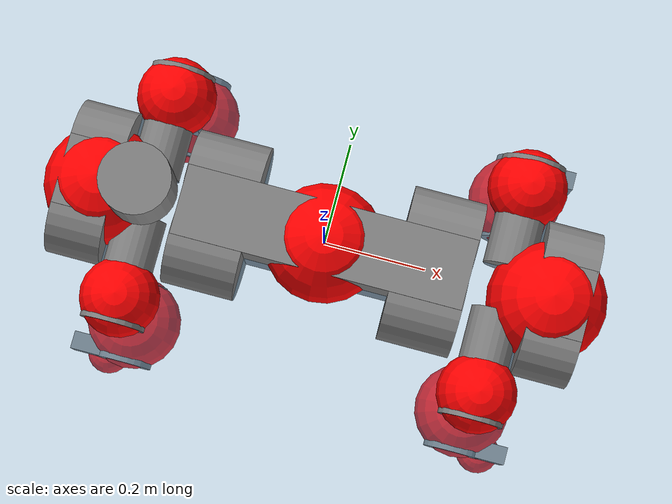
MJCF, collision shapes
<mujoco model="anymal_c">
  <compiler angle="radian" assetdir="assets" balanceinertia="true" inertiafromgeom="false"/>

  <option timestep="0.005" density="1.2" viscosity="2e-05"/>

  <size nkey="1"/>

  <visual>
    <quality shadowsize="8192"/>
    <map shadowclip="0.5"/>
  </visual>

  <default>
    <default class="/">
      <material specular="0" shininess="0.25"/>
      <geom contype="0" conaffinity="0" group="1" solref="-1000 -80"/>
      <site size="0.01 0.005 0.005" group="5"/>
      <general forcelimited="true" forcerange="-80 80" biastype="affine" gainprm="80" biasprm="0 -80 -2"/>
      <default class="anymal_c">
        <joint armature="0.01" damping="0.01" frictionloss="0.1"/>
        <default class="visual">
          <geom type="mesh" group="2"/>
          <default class="visual_zflip"/>
        </default>
        <default class="collision">
          <geom type="cylinder" group="3"/>
          <default class="foot">
            <geom size="0.03 0 0" type="sphere" condim="6" priority="1" friction="0.8 0.02 0.01" solimp="0.015 1 0.03"/>
          </default>
        </default>
      </default>
      <default class="reward_collision_sphere">
        <geom group="5" rgba="1 0 0 1"/>
      </default>
    </default>
  </default>

  <asset>
    <texture type="skybox" colorspace="auto" name="//unnamed_texture_0" builtin="gradient" rgb1="0.95 0.95 0.95" rgb2="0.95 0.95 0.95" width="100" height="600"/>
    <texture type="2d" colorspace="auto" name="texplane" builtin="checker" rgb1="0.345 0.575 0.748" rgb2="0.345 0.575 0.748" markrgb="1 1 1" width="512" height="512"/>
    <texture type="2d" colorspace="linear" name="base" file="base.png"/>
    <texture type="2d" colorspace="linear" name="top_shell" file="top_shell.png"/>
    <texture type="2d" colorspace="linear" name="bottom_shell" file="bottom_shell.png"/>
    <texture type="2d" colorspace="linear" name="remote" file="remote.png"/>
    <texture type="2d" colorspace="linear" name="hatch" file="hatch.png"/>
    <texture type="2d" colorspace="linear" name="handle" file="handle.png"/>
    <texture type="2d" colorspace="linear" name="face" file="face.png"/>
    <texture type="2d" colorspace="linear" name="battery" file="battery.png"/>
    <texture type="2d" colorspace="linear" name="lidar_cage" file="lidar_cage.png"/>
    <texture type="2d" colorspace="linear" name="depth_camera" file="depth_camera.png"/>
    <texture type="2d" colorspace="linear" name="wide_angle_camera" file="wide_angle_camera.png"/>
    <texture type="2d" colorspace="linear" name="lidar" file="lidar.png"/>
    <texture type="2d" colorspace="linear" name="drive" file="drive.png"/>
    <texture type="2d" colorspace="linear" name="hip_l" file="hip_l.png"/>
    <texture type="2d" colorspace="linear" name="shank_l" file="shank_l.png"/>
    <texture type="2d" colorspace="linear" name="foot" file="foot.png"/>
    <texture type="2d" colorspace="linear" name="thigh" file="thigh.png"/>
    <texture type="2d" colorspace="linear" name="shank_r" file="shank_r.png"/>
    <texture type="2d" colorspace="linear" name="hip_r" file="hip_r.png"/>
    <material name="MatPlane" class="/" texture="texplane" texuniform="true" texrepeat="2 2" specular="0.9" shininess="0.5"/>
    <material name="black_plastic" class="/" rgba="0.007 0.007 0.007 1"/>
    <material name="green" class="/" rgba="0.052 0.178 0.033 1"/>
    <material name="red" class="/" rgba="0.178 0.006 0.005 1"/>
    <material name="yellow" class="/" rgba="0.178 0.119 0.006 1"/>
    <material name="lwl" class="/" rgba="0.8 0.8 0.8 1"/>
    <material name="base" class="/" texture="base"/>
    <material name="top_shell" class="/" texture="top_shell"/>
    <material name="bottom_shell" class="/" texture="bottom_shell"/>
    <material name="hip_l" class="/" texture="hip_l"/>
    <material name="thigh" class="/" texture="thigh"/>
    <material name="shank_l" class="/" texture="shank_l"/>
    <material name="foot" class="/" texture="foot"/>
    <material name="hip_r" class="/" texture="hip_r"/>
    <material name="shank" class="/" texture="shank_r"/>
    <material name="hatch" class="/" texture="hatch"/>
    <material name="remote" class="/" texture="remote"/>
    <material name="handle" class="/" texture="handle"/>
    <material name="face" class="/" texture="face"/>
    <material name="depth_camera" class="/" texture="depth_camera"/>
    <material name="wide_angle_camera" class="/" texture="wide_angle_camera"/>
    <material name="battery" class="/" texture="battery"/>
    <material name="lidar_cage" class="/" texture="lidar_cage"/>
    <material name="lidar" class="/" texture="lidar"/>
    <material name="drive" class="/" texture="drive"/>
    <mesh name="base_0" class="/" file="base_0.obj"/>
    <mesh name="base_1" class="/" file="base_1.obj"/>
    <mesh name="base_2" class="/" file="base_2.obj"/>
    <mesh name="base_3" class="/" file="base_3.obj"/>
    <mesh name="base_4" class="/" file="base_4.obj"/>
    <mesh name="base_5" class="/" file="base_5.obj"/>
    <mesh name="top_shell" class="/" file="top_shell.obj"/>
    <mesh name="bottom_shell" class="/" file="bottom_shell.obj"/>
    <mesh name="remote" class="/" file="remote.obj"/>
    <mesh name="handle" class="/" file="handle.obj"/>
    <mesh name="face" class="/" file="face.obj"/>
    <mesh name="wide_angle_camera" class="/" file="wide_angle_camera.obj"/>
    <mesh name="depth_camera" class="/" file="depth_camera.obj"/>
    <mesh name="battery" class="/" file="battery.obj"/>
    <mesh name="lidar_cage" class="/" file="lidar_cage.obj"/>
    <mesh name="lidar" class="/" file="lidar.obj"/>
    <mesh name="drive" class="/" file="drive.obj"/>
    <mesh name="hip_l" class="/" file="hip_l.obj"/>
    <mesh name="thigh" class="/" file="thigh.obj"/>
    <mesh name="shank_l" class="/" file="shank_l.obj"/>
    <mesh name="foot" class="/" file="foot.obj"/>
    <mesh name="hip_r" class="/" file="hip_r.obj"/>
    <mesh name="hatch" class="/" file="hatch.obj"/>
    <mesh name="shank_r" class="/" file="shank_r.obj"/>
  </asset>

  <worldbody>
    <geom name="floor" class="/" size="100 100 0.125" type="plane" group="0" material="MatPlane"/>
    <light name="toplight_shadow" class="/" pos="0 0 5" dir="0.0990148 0.0990148 -0.990148" type="directional" ambient="0.04 0.04 0.04" diffuse="0.55 0.55 0.55" specular="0.12 0.12 0.12"/>
    <light name="toplight_fill" class="/" pos="0 0 5" dir="0.0990148 0.0990148 -0.990148" type="directional" castshadow="false" ambient="0.04 0.04 0.04" diffuse="0.3 0.3 0.3" specular="0.08 0.08 0.08"/>
    <body name="trunk" childclass="anymal_c" pos="-0.000142618 -0.000200808 0.000246174" quat="1 7.63773e-06 2.39517e-05 1.07708e-05">
      <inertial pos="0.00212686 -0.000695247 0.0495274" quat="0.500835 0.491715 0.502381 0.504969" mass="17.7531" diaginertia="0.581742 0.456305 0.223713"/>
      <joint name="//unnamed_joint_0" type="free" armature="0" damping="0" frictionloss="0"/>
      <geom name="//unnamed_geom_1" class="visual" material="green" mesh="base_0"/>
      <geom name="//unnamed_geom_2" class="visual" material="yellow" mesh="base_1"/>
      <geom name="//unnamed_geom_3" class="visual" material="red" mesh="base_2"/>
      <geom name="//unnamed_geom_4" class="visual" material="black_plastic" mesh="base_3"/>
      <geom name="//unnamed_geom_5" class="visual" material="lwl" mesh="base_4"/>
      <geom name="//unnamed_geom_6" class="visual" material="base" mesh="base_5"/>
      <geom name="trunk_1" class="collision" size="0.283235 0.068367 0.0879004" type="box"/>
      <geom name="trunk_2" class="collision" size="0.0879004 0.0708087" pos="0.21366 0.0656997 0" quat="0.707107 0 0.707107 0"/>
      <geom name="trunk_3" class="collision" size="0.0879004 0.0708087" pos="-0.21366 0.0656997 0" quat="0.707107 0 0.707107 0"/>
      <geom name="trunk_4" class="collision" size="0.0879004 0.0708087" pos="0.21366 -0.0656997 0" quat="0.707107 0 0.707107 0"/>
      <geom name="trunk_5" class="collision" size="0.0879004 0.0708087" pos="-0.21366 -0.0656997 0" quat="0.707107 0 0.707107 0"/>
      <geom name="//unnamed_geom_12" class="visual" material="top_shell" mesh="top_shell"/>
      <geom name="//unnamed_geom_13" class="visual" material="bottom_shell" mesh="bottom_shell"/>
      <geom name="//unnamed_geom_14" class="visual" material="remote" mesh="remote"/>
      <geom name="//unnamed_geom_15" class="visual" material="handle" mesh="handle"/>
      <geom name="//unnamed_geom_16" class="visual" pos="0.407182 0 0" quat="1 0 0 0" material="face" mesh="face"/>
      <geom name="trunk_6" class="collision" size="0.0537169 0.068367 0.0879004" pos="0.461211 0 0" type="box"/>
      <geom name="//unnamed_geom_18" class="collision" size="0.0879004 0.0537169" pos="0.461211 0.0656997 0" quat="0.707107 0 0.707107 0"/>
      <geom name="//unnamed_geom_19" class="collision" size="0.0879004 0.0537169" pos="0.461211 -0.0656997 0" quat="0.707107 0 0.707107 0"/>
      <geom name="//unnamed_geom_20" class="visual" pos="0.453501 0 -0.0296691" quat="0.965926 0 0.258819 0" material="depth_camera" mesh="depth_camera"/>
      <geom name="//unnamed_geom_21" class="visual" pos="0.503943 0 0.0151062" material="wide_angle_camera" mesh="wide_angle_camera"/>
      <geom name="//unnamed_geom_22" class="visual_zflip" pos="-0.407182 0 0" quat="0 0 0 1" material="face" mesh="face"/>
      <geom name="trunk_7" class="collision" size="0.0537169 0.068367 0.0879004" pos="-0.461211 0 0" quat="0 0 0 1" type="box"/>
      <geom name="//unnamed_geom_24" class="collision" size="0.0879004 0.0537169" pos="-0.461211 -0.0656997 0" quat="0 -0.707107 0 0.707107"/>
      <geom name="//unnamed_geom_25" class="collision" size="0.0879004 0.0537169" pos="-0.461211 0.0656997 0" quat="0 -0.707107 0 0.707107"/>
      <geom name="//unnamed_geom_26" class="visual" pos="-0.453501 0 -0.0296691" quat="0 -0.258819 0 0.965926" material="depth_camera" mesh="depth_camera"/>
      <geom name="//unnamed_geom_27" class="visual_zflip" pos="-0.503943 0 0.0151062" quat="0 0 0 1" material="wide_angle_camera" mesh="wide_angle_camera"/>
      <geom name="//unnamed_geom_28" class="visual" material="battery" mesh="battery"/>
      <geom name="//unnamed_geom_29" class="visual" pos="0 0.0711895 0.029111" quat="0.683013 -0.183013 0.183013 0.683013" material="depth_camera" mesh="depth_camera"/>
      <geom name="//unnamed_geom_30" class="visual" pos="0 -0.0711895 0.029111" quat="0.683013 0.183013 0.183013 -0.683013" material="depth_camera" mesh="depth_camera"/>
      <geom name="//unnamed_geom_31" class="visual" pos="-0.357574 0 0.0741689" quat="1 0 0 0" material="lidar_cage" mesh="lidar_cage"/>
      <geom name="trunk_8" class="collision" size="0.068367 0.0586003" pos="-0.357574 0 0.134715"/>
      <geom name="//unnamed_geom_33" class="visual" pos="-0.357574 -1.7199e-05 0.143494" quat="0.707107 0 0 -0.707107" material="lidar" mesh="lidar"/>
      <geom name="//unnamed_geom_34" class="visual" pos="0.294605 0.0976361 -1.21672e-09" quat="0.258819 0.965926 0 0" material="drive" mesh="drive"/>
      <geom name="//unnamed_geom_35" class="visual" pos="0.294605 -0.0976361 1.21672e-09" quat="0.258819 -0.965926 0 0" material="drive" mesh="drive"/>
      <geom name="//unnamed_geom_36" class="visual" pos="-0.294605 0.0976361 1.21672e-09" quat="0 0 0.965926 -0.258819" material="drive" mesh="drive"/>
      <geom name="//unnamed_geom_37" class="visual" pos="-0.294605 -0.0976361 -1.21672e-09" quat="0 0 -0.965926 -0.258819" material="drive" mesh="drive"/>
      <geom name="//unnamed_geom_38" class="visual" pos="0.113952 0 0.0736644" quat="1 0 0 0" material="hatch" mesh="hatch"/>
      <geom name="//unnamed_geom_39" class="reward_collision_sphere" size="0.117201"/>
      <geom name="//unnamed_geom_40" class="reward_collision_sphere" size="0.117201" pos="0.442055 0 0"/>
      <geom name="//unnamed_geom_41" class="reward_collision_sphere" size="0.117201" pos="-0.442055 0 0"/>
      <site name="imu" pos="0.244649 0.00367208 0.0457341" size="0.00976671"/>
      <camera name="track" pos="0 -1.87714 0" quat="0.707107 0.707107 0 0" mode="trackcom"/>
      <camera name="ego_camera" pos="0.442055 0 -0.0403641" quat="-0.5 -0.5 0.5 0.5"/>
      <body name="LF_HIP" pos="0.294591 0.0999702 0.00103028" quat="0.258748 0.965945 0.00016087 -1.99943e-05">
        <inertial pos="0.0552015 -0.0141172 -0.0092286" quat="-0.129038 0.710303 -0.133773 0.678913" mass="2.59478" diaginertia="0.00535251 0.00359459 0.00346917"/>
        <joint name="LF_HAA" pos="0 0 0" axis="0.999997 0.000526791 0.00246736" range="-0.679828 0.470413" armature="0.00988375" damping="0.0060914" frictionloss="0.095586"/>
        <geom name="//unnamed_geom_42" class="visual" pos="0 -7.15739e-05 1.17559e-05" quat="0.258819 -0.965926 0 0" material="hip_l" mesh="hip_l"/>
        <geom name="//unnamed_geom_43" class="visual" pos="0.0588425 -0.0707488 -0.0413686" quat="0.183013 -0.683013 0.683013 0.183013" material="drive" mesh="drive"/>
        <geom name="//unnamed_geom_44" class="collision" size="0.0488336 0.068367" pos="0.0588425 -0.0112251 -0.00696784" quat="-0.353553 -0.612372 0.612372 -0.353553"/>
        <body name="LF_THIGH" pos="0.0590985 -0.066801 -0.0420673" quat="0.183005 -0.683058 0.682946 0.1831">
          <inertial pos="0.0303318 -0.000629186 -0.247356" quat="0.993091 -0.00534311 -0.0840523 0.0817113" mass="2.86061" diaginertia="0.0276861 0.0217188 0.00438814"/>
          <joint name="LF_HFE" pos="0 0 0" axis="0.999995 -0.00315471 -0.000400737" range="-3.16243 3.16432" armature="0.010002" damping="0.00880179" frictionloss="0.0936408"/>
          <geom name="//unnamed_geom_45" class="visual" pos="0.000870999 1.37249e-06 0" quat="0.707107 0 0 -0.707107" material="thigh" mesh="thigh"/>
          <geom name="//unnamed_geom_46" class="collision" size="0.0634836 0.0390669" pos="0.0392938 0 0" quat="0.5 0.5 -0.5 -0.5"/>
          <geom name="//unnamed_geom_47" class="collision" size="0.0366252 0.0293001 0.138017" pos="0.0294703 0 -0.1426" quat="0.707107 0 0 -0.707107" type="box"/>
          <geom name="//unnamed_geom_48" class="visual" pos="0.0985292 0 -0.287594" quat="1 0 0 0" material="drive" mesh="drive"/>
          <geom name="//unnamed_geom_49" class="collision" size="0.0488336 0.068367" pos="0.0297651 0 -0.287594" quat="0.707107 0 0.707107 0"/>
          <geom name="//unnamed_geom_50" class="reward_collision_sphere" size="0.0781337" pos="0.0245586 0 0"/>
          <body name="LF_SHANK" pos="0.0994033 -0.00171312 -0.287158" quat="1 1.3677e-05 -9.95985e-05 -0.000372697">
            <inertial pos="0.00483311 -0.0574027 -0.0831536" quat="0.99297 -0.11558 -0.0014467 -0.0255074" mass="0.546024" diaginertia="0.00930747 0.00686982 0.0011504"/>
            <joint name="LF_KFE" pos="0 0 0" axis="0.999992 -0.00179876 -0.00344773" range="-3.17407 3.14302" armature="0.0101295" damping="0.00938848" frictionloss="0.0983301"/>
            <geom name="//unnamed_geom_51" class="visual" pos="0.000284014 0.00151438 0" quat="0.707107 0 0 -0.707107" material="shank_l" mesh="shank_l"/>
            <geom name="LF_kfe_act" class="collision" size="0.0586003 0.0195334" pos="0.0196469 0 0" quat="0.5 0.5 -0.5 -0.5"/>
            <geom name="//unnamed_geom_53" class="collision" size="0.0561576 0.0329627 0.0185568" pos="0.0196469 -0.0539667 0" quat="0.5 0.5 -0.5 -0.5" type="box"/>
            <geom name="//unnamed_geom_54" class="visual" pos="0.0128195 -0.082059 -0.341046" quat="0.382683 0 0 -0.92388" material="foot" mesh="foot"/>
            <geom name="LF_calf" class="collision" size="0.0170917 0.137957" pos="0.0128196 -0.082547 -0.170523" quat="0.707107 0 0 -0.707107"/>
            <geom name="LF_foot" class="foot" size="0.0299819" pos="0.0128196 -0.082547 -0.318341" quat="0.707107 0 0 -0.707107"/>
            <geom name="//unnamed_geom_57" class="reward_collision_sphere" size="0.0976671" pos="-0.0491172 0 0"/>
            <geom name="//unnamed_geom_58" class="reward_collision_sphere" size="0.0488336" pos="0.0128196 -0.082547 -0.318341"/>
            <site name="LF_foot" class="foot" pos="0.0128196 -0.082547 -0.318341" quat="0.707107 0 0 -0.707107" size="0.00976671"/>
          </body>
        </body>
      </body>
      <body name="RF_HIP" pos="0.294848 -0.0976851 0.00131648" quat="0.258817 -0.965926 -4.66279e-05 -3.75957e-05">
        <inertial pos="0.0565293 0.0147171 -0.00837903" quat="0.134716 0.678826 0.127894 0.710415" mass="2.56564" diaginertia="0.00540168 0.00350099 0.00346466"/>
        <joint name="RF_HAA" pos="0 0 0" axis="1 0.000234219 -0.000235078" range="-0.491439 0.724811" armature="0.00953098" damping="0.00727269" frictionloss="0.0941526"/>
        <geom name="//unnamed_geom_59" class="visual" pos="0 7.15733e-05 1.17559e-05" quat="0.258819 0.965926 0 0" material="hip_r" mesh="hip_r"/>
        <geom name="//unnamed_geom_60" class="visual" pos="0.0588425 0.0707488 -0.0413686" quat="0.183013 0.683013 0.683013 -0.183013" material="drive" mesh="drive"/>
        <geom name="//unnamed_geom_61" class="collision" size="0.0488336 0.068367" pos="0.0588425 0.0112251 -0.00696784" quat="-0.353553 0.612372 0.612372 0.353553"/>
        <body name="RF_THIGH" pos="0.0605238 0.0702085 -0.0434172" quat="0.183228 0.683102 0.682986 -0.182563">
          <inertial pos="0.0313275 -0.00189203 -0.247527" quat="0.993126 -0.00413183 -0.0800434 0.0852982" mass="2.8735" diaginertia="0.0279131 0.021903 0.00445696"/>
          <joint name="RF_HFE" pos="0 0 0" axis="1 -0.000317386 -6.21821e-05" stiffness="0.000827183" range="-3.17118 3.13943" armature="0.00996549" damping="0.00927122" frictionloss="0.0977123"/>
          <geom name="//unnamed_geom_62" class="visual" pos="0.000870999 1.37249e-06 0" quat="0.707107 0 0 -0.707107" material="thigh" mesh="thigh"/>
          <geom name="//unnamed_geom_63" class="collision" size="0.0634836 0.0390669" pos="0.0392938 0 0" quat="0.5 0.5 0.5 0.5"/>
          <geom name="//unnamed_geom_64" class="collision" size="0.0366252 0.0293001 0.138017" pos="0.0294703 0 -0.1426" quat="0.707107 0 0 0.707107" type="box"/>
          <geom name="//unnamed_geom_65" class="visual" pos="0.0985292 0 -0.287594" quat="1 0 0 0" material="drive" mesh="drive"/>
          <geom name="//unnamed_geom_66" class="collision" size="0.0488336 0.068367" pos="0.0297651 0 -0.287594" quat="0.707107 0 0.707107 0"/>
          <geom name="//unnamed_geom_67" class="reward_collision_sphere" size="0.0781337" pos="0.0245586 0 0"/>
          <body name="RF_SHANK" pos="0.0970319 0.00105528 -0.287236" quat="1 -0.000194713 0.000361604 -4.79614e-05">
            <inertial pos="0.00462522 0.0575076 -0.0814915" quat="0.992958 0.115119 -0.00333838 0.0277463" mass="0.549923" diaginertia="0.00931908 0.0067213 0.00116373"/>
            <joint name="RF_KFE" pos="0 0 0" axis="0.999948 0.00397098 -0.00943978" range="-3.13117 3.1416" armature="0.0104167" damping="0.0150852" frictionloss="0.0939791"/>
            <geom name="//unnamed_geom_68" class="visual" pos="0.000284012 -0.00151437 0" quat="0.707107 0 0 0.707107" material="shank" mesh="shank_r"/>
            <geom name="RF_kfe_act" class="collision" size="0.0586003 0.0195334" pos="0.0196469 0 0" quat="0.5 0.5 0.5 0.5"/>
            <geom name="//unnamed_geom_70" class="collision" size="0.0561576 0.0329627 0.0185568" pos="0.0196469 0.0539667 0" quat="0.5 0.5 0.5 0.5" type="box"/>
            <geom name="//unnamed_geom_71" class="visual" pos="0.0128197 0.082059 -0.341046" quat="0.382683 0 0 0.92388" material="foot" mesh="foot"/>
            <geom name="RF_calf" class="collision" size="0.0170917 0.137957" pos="0.0128196 0.082547 -0.170523" quat="0.707107 0 0 0.707107"/>
            <geom name="RF_foot" class="foot" size="0.030408" pos="0.0128196 0.082547 -0.318341" quat="0.707107 0 0 0.707107"/>
            <geom name="//unnamed_geom_74" class="reward_collision_sphere" size="0.0976671" pos="-0.0491172 0 0"/>
            <geom name="//unnamed_geom_75" class="reward_collision_sphere" size="0.0488336" pos="0.0128196 0.082547 -0.318341"/>
            <site name="RF_foot" class="foot" pos="0.0128196 0.082547 -0.318341" quat="0.707107 0 0 0.707107" size="0.00976671"/>
          </body>
        </body>
      </body>
      <body name="LH_HIP" pos="-0.293657 0.0985822 -0.000900233" quat="-0.000320187 -1.56211e-05 0.965846 -0.259116">
        <inertial pos="0.0559756 0.0135616 -0.00931939" quat="0.136103 0.679561 0.126438 0.709708" mass="2.54757" diaginertia="0.00528857 0.00354118 0.00339274"/>
        <joint name="LH_HAA" pos="0 0 0" axis="1 -6.42938e-05 -0.000691617" stiffness="9.6115e-05" range="-0.488714 0.740209" armature="0.0096815" damping="0.00933632" frictionloss="0.0994113"/>
        <geom name="//unnamed_geom_76" class="visual" pos="0 7.15733e-05 1.17559e-05" quat="-0.258819 -0.965926 0 0" material="hip_r" mesh="hip_r"/>
        <geom name="//unnamed_geom_77" class="visual" pos="0.0588425 0.0707488 -0.0413686" quat="0.183013 0.683013 0.683013 -0.183013" material="drive" mesh="drive"/>
        <geom name="//unnamed_geom_78" class="collision" size="0.0488336 0.068367" pos="0.0588425 0.0112251 -0.00696784" quat="-0.353553 0.612372 0.612372 0.353553"/>
        <body name="LH_THIGH" pos="0.0585593 0.067206 -0.0441608" quat="0.182893 0.682995 0.683074 -0.182968">
          <inertial pos="0.0305803 -0.000572905 -0.249237" quat="0.992333 -0.00680078 -0.0824103 0.0918525" mass="2.89894" diaginertia="0.0274461 0.0212917 0.00431962"/>
          <joint name="LH_HFE" pos="0 0 0" axis="0.99998 0.00551449 -0.00314606" stiffness="0.000316308" range="-3.14826 3.12624" armature="0.0101447" damping="0.00390873" frictionloss="0.0962047"/>
          <geom name="//unnamed_geom_79" class="visual" pos="0.000870999 1.37249e-06 0" quat="0.707107 0 0 -0.707107" material="thigh" mesh="thigh"/>
          <geom name="//unnamed_geom_80" class="collision" size="0.0634836 0.0390669" pos="0.0392938 0 0" quat="0.5 0.5 -0.5 -0.5"/>
          <geom name="//unnamed_geom_81" class="collision" size="0.0366252 0.0293001 0.138017" pos="0.0294703 0 -0.1426" quat="0.707107 0 0 -0.707107" type="box"/>
          <geom name="//unnamed_geom_82" class="visual" pos="0.0985292 0 -0.287594" quat="1 0 0 0" material="drive" mesh="drive"/>
          <geom name="//unnamed_geom_83" class="collision" size="0.0488336 0.068367" pos="0.0297651 0 -0.287594" quat="0.707107 0 0.707107 0"/>
          <geom name="//unnamed_geom_84" class="reward_collision_sphere" size="0.0781337" pos="0.0245586 0 0"/>
          <body name="LH_SHANK" pos="0.0992117 -0.00254784 -0.288792" quat="1 -1.03088e-05 7.28588e-05 -5.28954e-05">
            <inertial pos="0.00512001 0.0573992 -0.081903" quat="0.992936 0.115678 -0.00152151 0.0263611" mass="0.538592" diaginertia="0.00931374 0.00668157 0.00115981"/>
            <joint name="LH_KFE" pos="0 0 0" axis="0.999993 0.00282051 0.00230526" range="-3.11071 3.13765" armature="0.00960504" damping="0.0139393" frictionloss="0.0981922"/>
            <geom name="//unnamed_geom_85" class="visual" pos="0.000284012 -0.00151437 0" quat="-0.707107 0 0 -0.707107" material="shank" mesh="shank_r"/>
            <geom name="LH_kfe_act" class="collision" size="0.0586003 0.0195334" pos="0.0196469 0 0" quat="0.5 0.5 -0.5 -0.5"/>
            <geom name="//unnamed_geom_87" class="collision" size="0.0561576 0.0329627 0.0185568" pos="0.0196469 0.0539667 0" quat="0.5 0.5 -0.5 -0.5" type="box"/>
            <geom name="//unnamed_geom_88" class="visual" pos="0.0128197 0.082059 -0.341046" quat="-0.382683 0 0 -0.92388" material="foot" mesh="foot"/>
            <geom name="LH_calf" class="collision" size="0.0170917 0.137957" pos="0.0128196 0.082547 -0.170523" quat="0.707107 0 0 -0.707107"/>
            <geom name="LH_foot" class="foot" size="0.0296174" pos="0.0128196 0.082547 -0.318341" quat="0.707107 0 0 -0.707107"/>
            <geom name="//unnamed_geom_91" class="reward_collision_sphere" size="0.0976671" pos="-0.0491172 0 0"/>
            <geom name="//unnamed_geom_92" class="reward_collision_sphere" size="0.0488336" pos="0.0128196 0.082547 -0.318341"/>
            <site name="LH_foot" class="foot" pos="0.0128196 0.082547 -0.318341" quat="0.707107 0 0 -0.707107" size="0.00976671"/>
          </body>
        </body>
      </body>
      <body name="RH_HIP" pos="-0.294639 -0.0982526 0.00119145" quat="-9.18901e-05 0.000120217 -0.965905 -0.258895">
        <inertial pos="0.0554841 -0.0137472 -0.00814042" quat="-0.12803 0.709689 -0.135363 0.679431" mass="2.55497" diaginertia="0.00530757 0.00350893 0.00346304"/>
        <joint name="RH_HAA" pos="0 0 0" axis="0.999995 -0.00303268 0.00104356" range="-0.734026 0.467962" armature="0.00972054" damping="0.00909591" frictionloss="0.0996348"/>
        <geom name="//unnamed_geom_93" class="visual" pos="0 -7.15739e-05 1.17559e-05" quat="-0.258819 0.965926 0 0" material="hip_l" mesh="hip_l"/>
        <geom name="//unnamed_geom_94" class="visual" pos="0.0588425 -0.0707488 -0.0413686" quat="-0.183013 0.683013 -0.683013 -0.183013" material="drive" mesh="drive"/>
        <geom name="//unnamed_geom_95" class="collision" size="0.0488336 0.068367" pos="0.0588425 -0.0112251 -0.00696784" quat="0.353553 0.612372 -0.612372 0.353553"/>
        <body name="RH_THIGH" pos="0.058409 -0.067927 -0.0430856" quat="-0.183233 0.683261 -0.682582 -0.183471">
          <inertial pos="0.0305517 -0.0012944 -0.248411" quat="0.993182 -0.0056685 -0.0800683 0.0845328" mass="2.87698" diaginertia="0.0279927 0.0218807 0.0044187"/>
          <joint name="RH_HFE" pos="0 0 0" axis="0.999983 -0.0047621 -0.00325733" range="-3.1331 3.12815" armature="0.00986111" damping="0.00592228" frictionloss="0.0998129"/>
          <geom name="//unnamed_geom_96" class="visual" pos="0.000870999 1.37249e-06 0" quat="0.707107 0 0 -0.707107" material="thigh" mesh="thigh"/>
          <geom name="//unnamed_geom_97" class="collision" size="0.0634836 0.0390669" pos="0.0392938 0 0" quat="0.5 0.5 0.5 0.5"/>
          <geom name="//unnamed_geom_98" class="collision" size="0.0366252 0.0293001 0.138017" pos="0.0294703 0 -0.1426" quat="0.707107 0 0 0.707107" type="box"/>
          <geom name="//unnamed_geom_99" class="visual" pos="0.0985292 0 -0.287594" quat="1 0 0 0" material="drive" mesh="drive"/>
          <geom name="//unnamed_geom_100" class="collision" size="0.0488336 0.068367" pos="0.0297651 0 -0.287594" quat="0.707107 0 0.707107 0"/>
          <geom name="//unnamed_geom_101" class="reward_collision_sphere" size="0.0781337" pos="0.0245586 0 0"/>
          <body name="RH_SHANK" pos="0.0958321 0.000743778 -0.286641" quat="1 0.000507709 0.00033237 0.000100109">
            <inertial pos="0.00743201 -0.0574482 -0.0810561" quat="0.992637 -0.118164 0.00242483 -0.0265151" mass="0.548971" diaginertia="0.009445 0.00676647 0.00117611"/>
            <joint name="RH_KFE" pos="0 0 0" axis="1 -0.000767636 -6.36351e-05" range="-3.13223 3.16207" armature="0.00920819" damping="0.00839728" frictionloss="0.09816"/>
            <geom name="//unnamed_geom_102" class="visual" pos="0.000284014 0.00151438 0" quat="0.707107 0 0 -0.707107" material="shank_l" mesh="shank_l"/>
            <geom name="RH_kfe_act" class="collision" size="0.0586003 0.0195334" pos="0.0196469 0 0" quat="0.5 0.5 0.5 0.5"/>
            <geom name="//unnamed_geom_104" class="collision" size="0.0561576 0.0329627 0.0185568" pos="0.0196469 -0.0539667 0" quat="0.5 0.5 0.5 0.5" type="box"/>
            <geom name="//unnamed_geom_105" class="visual" pos="0.0128195 -0.082059 -0.341046" quat="0.382683 0 0 -0.92388" material="foot" mesh="foot"/>
            <geom name="RH_calf" class="collision" size="0.0170917 0.137957" pos="0.0128196 -0.082547 -0.170523" quat="0.707107 0 0 0.707107"/>
            <geom name="RH_foot" class="foot" size="0.0293346" pos="0.0128196 -0.082547 -0.318341" quat="0.707107 0 0 0.707107"/>
            <geom name="//unnamed_geom_108" class="reward_collision_sphere" size="0.0976671" pos="-0.0491172 0 0"/>
            <geom name="//unnamed_geom_109" class="reward_collision_sphere" size="0.0488336" pos="0.0128196 -0.082547 -0.318341"/>
            <site name="RH_foot" class="foot" pos="0.0128196 -0.082547 -0.318341" quat="0.707107 0 0 0.707107" size="0.00976671"/>
          </body>
        </body>
      </body>
    </body>
  </worldbody>

  <contact>
    <pair class="/" geom1="floor" geom2="LF_foot" name="//unnamed_contact_0"/>
    <pair class="/" geom1="floor" geom2="RF_foot" name="//unnamed_contact_1"/>
    <pair class="/" geom1="floor" geom2="LH_foot" name="//unnamed_contact_2"/>
    <pair class="/" geom1="floor" geom2="RH_foot" name="//unnamed_contact_3"/>
  </contact>

  <actuator>
    <general name="LF_HAA" class="/" joint="LF_HAA" forcerange="-84.7284 84.7284" gainprm="80.2666" biasprm="0 -80.2666 -1.89685"/>
    <general name="LF_HFE" class="/" joint="LF_HFE" forcerange="-80.2405 80.2405" gainprm="80.2666" biasprm="0 -80.2666 -1.89685"/>
    <general name="LF_KFE" class="/" joint="LF_KFE" forcerange="-77.7477 77.7477" gainprm="80.2666" biasprm="0 -80.2666 -1.89685"/>
    <general name="RF_HAA" class="/" joint="RF_HAA" forcerange="-83.0414 83.0414" gainprm="80.2666" biasprm="0 -80.2666 -1.89685"/>
    <general name="RF_HFE" class="/" joint="RF_HFE" forcerange="-84.1166 84.1166" gainprm="80.2666" biasprm="0 -80.2666 -1.89685"/>
    <general name="RF_KFE" class="/" joint="RF_KFE" forcerange="-77.4325 77.4325" gainprm="80.2666" biasprm="0 -80.2666 -1.89685"/>
    <general name="LH_HAA" class="/" joint="LH_HAA" forcerange="-77.2497 77.2497" gainprm="80.2666" biasprm="0 -80.2666 -1.89685"/>
    <general name="LH_HFE" class="/" joint="LH_HFE" forcerange="-79.1663 79.1663" gainprm="80.2666" biasprm="0 -80.2666 -1.89685"/>
    <general name="LH_KFE" class="/" joint="LH_KFE" forcerange="-81.6401 81.6401" gainprm="80.2666" biasprm="0 -80.2666 -1.89685"/>
    <general name="RH_HAA" class="/" joint="RH_HAA" forcerange="-74.0137 74.0137" gainprm="80.2666" biasprm="0 -80.2666 -1.89685"/>
    <general name="RH_HFE" class="/" joint="RH_HFE" forcerange="-77.1596 77.1596" gainprm="80.2666" biasprm="0 -80.2666 -1.89685"/>
    <general name="RH_KFE" class="/" joint="RH_KFE" forcerange="-78.0566 78.0566" gainprm="80.2666" biasprm="0 -80.2666 -1.89685"/>
  </actuator>

  <sensor>
    <gyro site="imu" name="imu_angular_velocity"/>
    <velocimeter site="imu" name="imu_linear_velocity"/>
    <framelinvel objtype="site" objname="LF_foot" name="LF_foot_global_linear_velocity"/>
    <framelinvel objtype="site" objname="RF_foot" name="RF_foot_global_linear_velocity"/>
    <framelinvel objtype="site" objname="LH_foot" name="LH_foot_global_linear_velocity"/>
    <framelinvel objtype="site" objname="RH_foot" name="RH_foot_global_linear_velocity"/>
  </sensor>

  <keyframe>
    <key name="home" qpos="0 0 0.55 1 0 0 0 0 0.4 -0.8 0 -0.4 0.8 0 -0.4 0.8 0 0.4 -0.8"/>
  </keyframe>
</mujoco>
